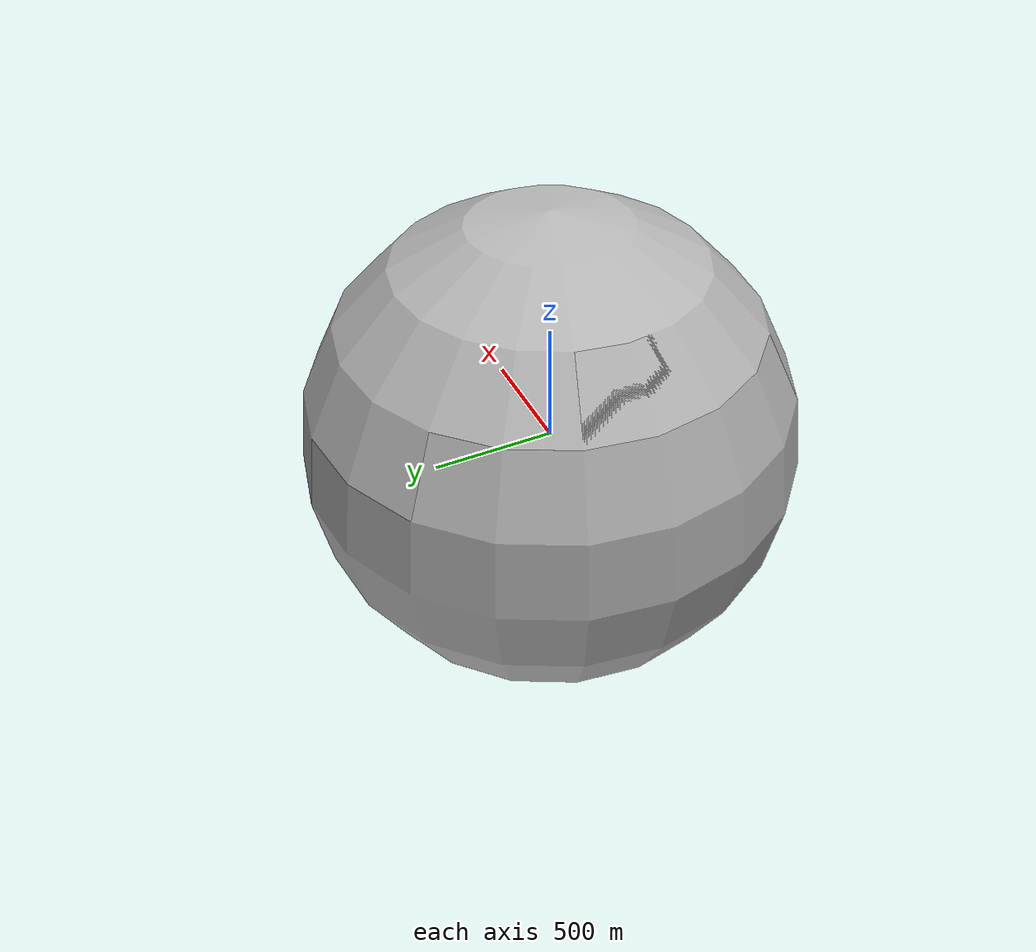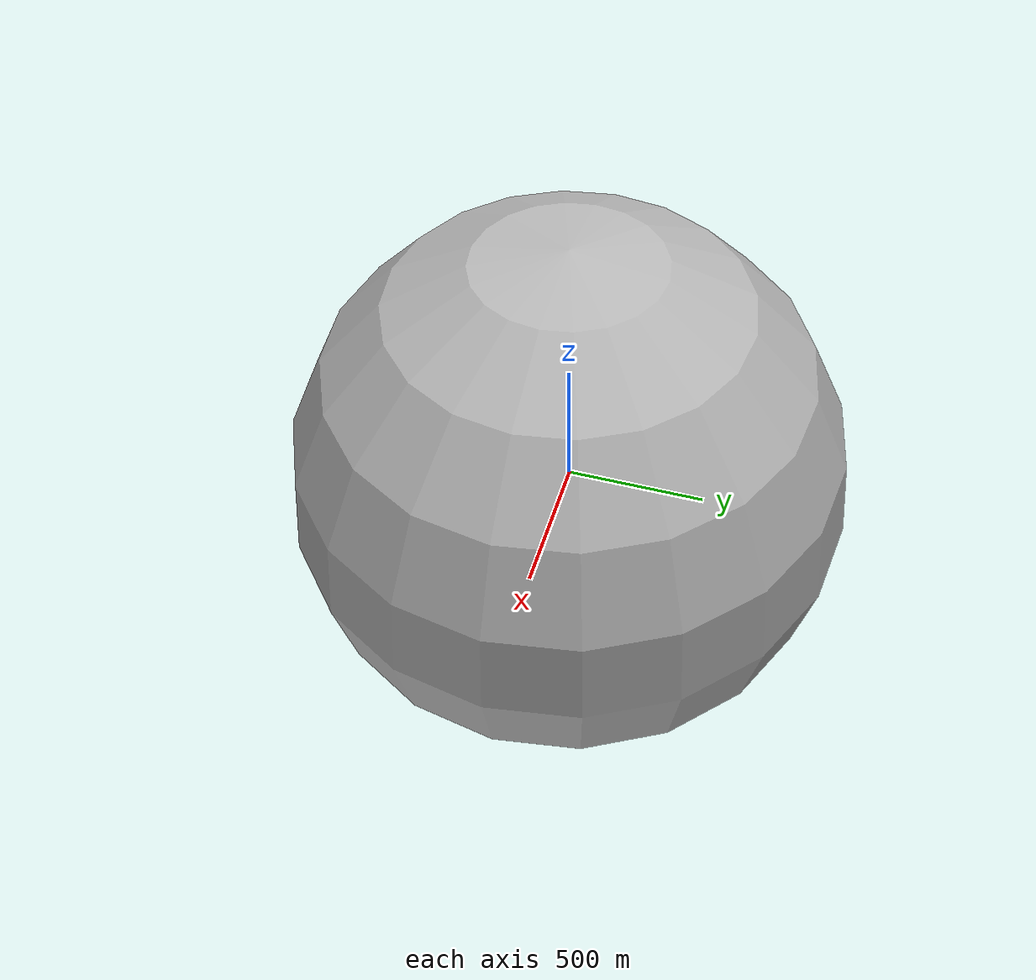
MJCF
<mujoco>
  <option gravity="0 0 -9.81" />
  <worldbody>

    <body name="object_3" pos="0 0 2">
      <geom type="sphere" size="0.2" rgba="0.7 0.7 0.7 1" />
    </body>
  <body name="pendulum1" pos="0.707 0.0 2.707"><geom type="sphere" size="1000.0" rgba="0.7 0.7 0.7 1" /></body><body name="pendulum2" pos="1.414 0.0 3.414"><geom type="sphere" size="1000.0" rgba="0.7 0.7 0.7 1" /></body></worldbody>
<joint name="joint_object_3_object_1" type="revolute" body1="object_3" body2="object_1" /><joint name="joint_object_1_object_2" type="revolute" body1="object_1" body2="object_2" /></mujoco>
